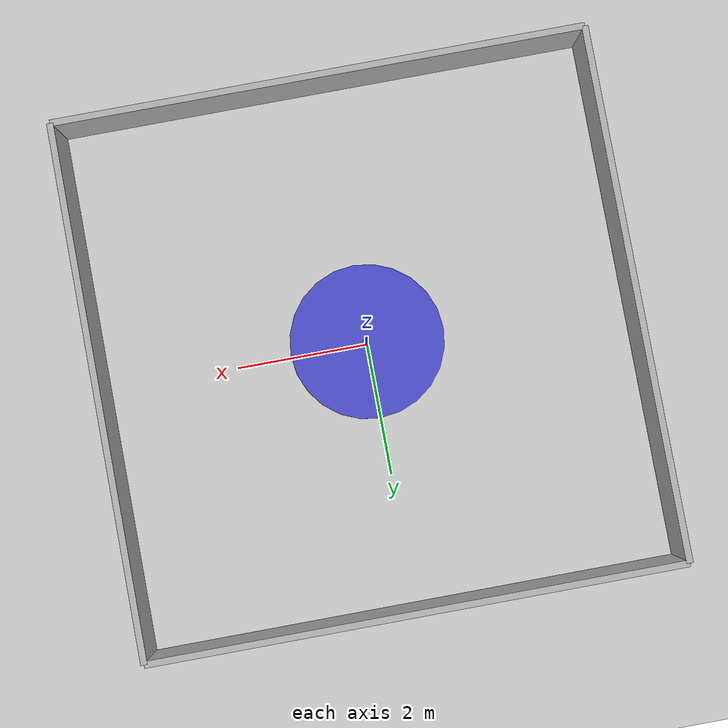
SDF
<?xml version="1.0" ?>
<sdf version="1.5">
  <world name="test2">

    <!-- 조명 + 바닥 -->
    <include>
      <uri>model://sun</uri>
    </include>
    <include>
      <uri>model://ground_plane</uri>
    </include>

    <!-- ===== 외벽 (8m x 8m 정사각형) ===== -->

    <!-- 하단 벽 (y=-4) -->
    <model name="wall_south">
      <static>true</static>
      <pose>0 -4 0.5 0 0 0</pose>
      <link name="link">
        <collision name="collision">
          <geometry>
            <box>
              <size>8 0.1 1</size>
            </box>
          </geometry>
        </collision>
        <visual name="visual">
          <geometry>
            <box>
              <size>8 0.1 1</size>
            </box>
          </geometry>
          <material>
            <ambient>0.7 0.7 0.7 1</ambient>
          </material>
        </visual>
      </link>
    </model>

    <!-- 상단 벽 (y=4) -->
    <model name="wall_north">
      <static>true</static>
      <pose>0 4 0.5 0 0 0</pose>
      <link name="link">
        <collision name="collision">
          <geometry>
            <box>
              <size>8 0.1 1</size>
            </box>
          </geometry>
        </collision>
        <visual name="visual">
          <geometry>
            <box>
              <size>8 0.1 1</size>
            </box>
          </geometry>
          <material>
            <ambient>0.7 0.7 0.7 1</ambient>
          </material>
        </visual>
      </link>
    </model>

    <!-- 왼쪽 벽 (x=-4) -->
    <model name="wall_west">
      <static>true</static>
      <pose>-4 0 0.5 0 0 0</pose>
      <link name="link">
        <collision name="collision">
          <geometry>
            <box>
              <size>0.1 8 1</size>
            </box>
          </geometry>
        </collision>
        <visual name="visual">
          <geometry>
            <box>
              <size>0.1 8 1</size>
            </box>
          </geometry>
          <material>
            <ambient>0.7 0.7 0.7 1</ambient>
          </material>
        </visual>
      </link>
    </model>

    <!-- 오른쪽 벽 (x=4) -->
    <model name="wall_east">
      <static>true</static>
      <pose>4 0 0.5 0 0 0</pose>
      <link name="link">
        <collision name="collision">
          <geometry>
            <box>
              <size>0.1 8 1</size>
            </box>
          </geometry>
        </collision>
        <visual name="visual">
          <geometry>
            <box>
              <size>0.1 8 1</size>
            </box>
          </geometry>
          <material>
            <ambient>0.7 0.7 0.7 1</ambient>
          </material>
        </visual>
      </link>
    </model>

    <!-- ===== 중앙 장애물 (박스와 동일 면적의 원형 실린더) ===== -->
    <model name="center_cylinder">
      <static>true</static>
      <pose>0 0 0.5 0 0 0</pose>
      <link name="link">
        <collision name="collision">
          <geometry>
            <cylinder>
              <radius>1.128</radius>
              <length>1.0</length>
            </cylinder>
          </geometry>
        </collision>
        <visual name="visual">
          <geometry>
            <cylinder>
              <radius>1.128</radius>
              <length>1.0</length>
            </cylinder>
          </geometry>
          <material>
            <ambient>0.3 0.3 0.8 1</ambient>
          </material>
        </visual>
      </link>
    </model>

  </world>
</sdf>
